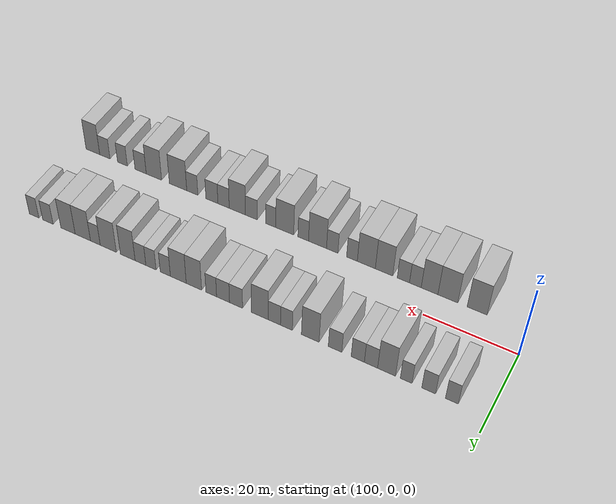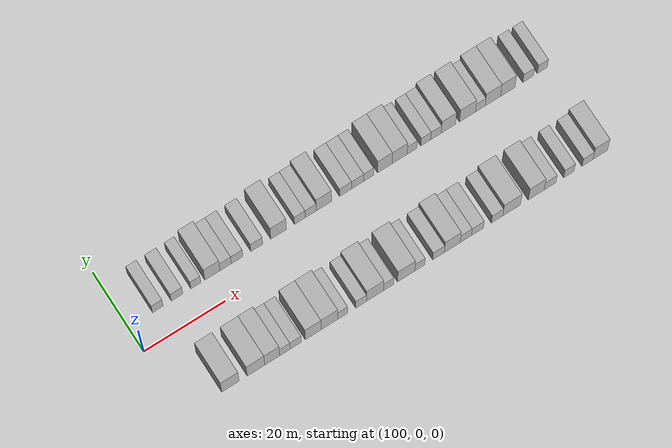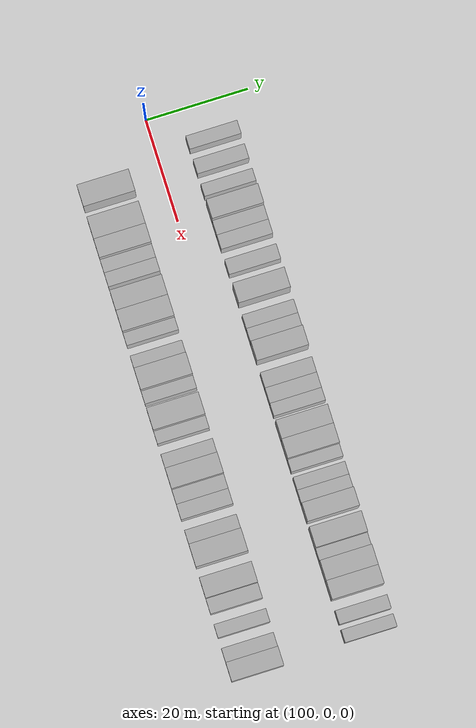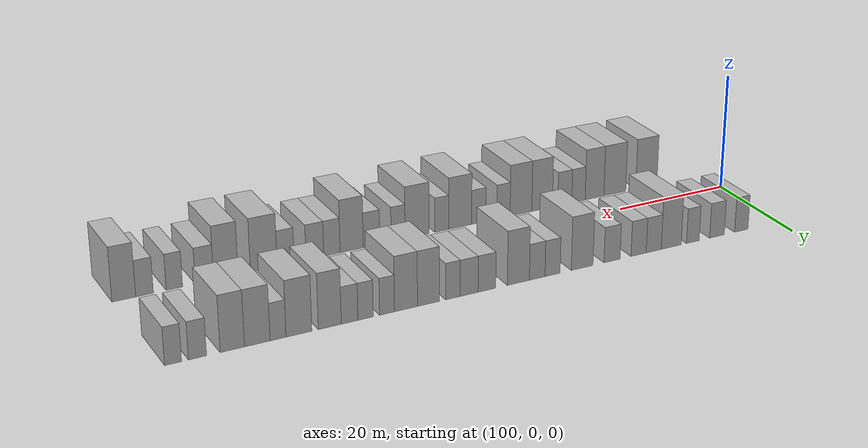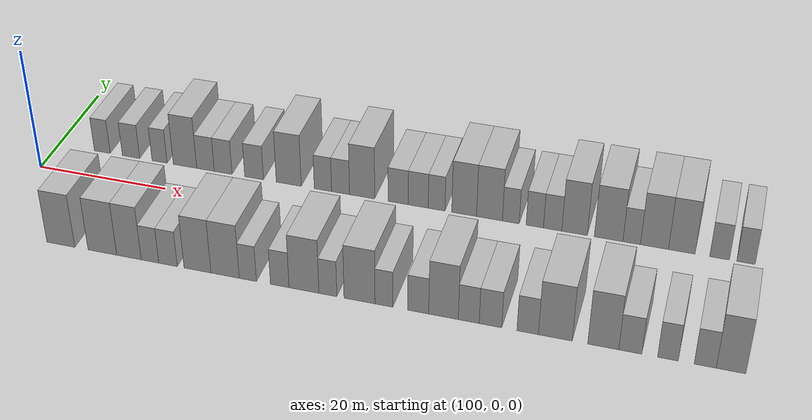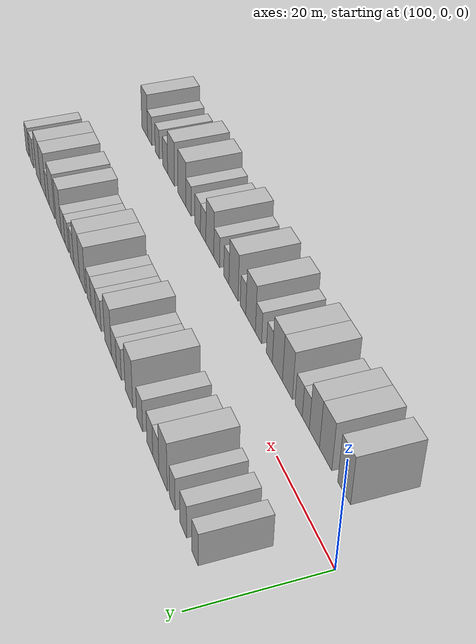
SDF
<sdf version="1.6">
 <world name="default">
  <model name="building_26">
   <static>1</static>
   <pose>107.2068 11.0000 0 0.000000 0.000000 1.570796</pose>
   <link name="link">
    <pose>0 0 3.00 0 0 0</pose>
    <collision name="collision"><geometry><box><size>10.0000 2.5972 6.0000</size></box></geometry></collision>
    <visual name="visual">
     <cast_shadows>0</cast_shadows>
     <geometry><box><size>10.0000 2.5972 6.0000</size></box></geometry>
     <material>
      <script>
       <uri>model://HANNAS_wall/materials/scripts</uri>
       <uri>model://HANNAS_wall/materials/textures</uri>
       <name>vrc/HANNAS_wall</name>
      </script>
     </material>
    </visual>
   </link>
  </model>
  <model name="building_27">
   <static>1</static>
   <pose>111.9166 11.0000 0 0.000000 0.000000 1.570796</pose>
   <link name="link">
    <pose>0 0 3.00 0 0 0</pose>
    <collision name="collision"><geometry><box><size>10.0000 2.8224 6.0000</size></box></geometry></collision>
    <visual name="visual">
     <cast_shadows>0</cast_shadows>
     <geometry><box><size>10.0000 2.8224 6.0000</size></box></geometry>
     <material>
      <script>
       <uri>model://HANNAS_wall/materials/scripts</uri>
       <uri>model://HANNAS_wall/materials/textures</uri>
       <name>vrc/HANNAS_wall</name>
      </script>
     </material>
    </visual>
   </link>
  </model>
  <model name="building_28">
   <static>1</static>
   <pose>116.5382 11.0000 0 0.000000 0.000000 1.570796</pose>
   <link name="link">
    <pose>0 0 3.00 0 0 0</pose>
    <collision name="collision"><geometry><box><size>10.0000 2.4210 6.0000</size></box></geometry></collision>
    <visual name="visual">
     <cast_shadows>0</cast_shadows>
     <geometry><box><size>10.0000 2.4210 6.0000</size></box></geometry>
     <material>
      <script>
       <uri>model://HANNAS_wall/materials/scripts</uri>
       <uri>model://HANNAS_wall/materials/textures</uri>
       <name>vrc/HANNAS_wall</name>
      </script>
     </material>
    </visual>
   </link>
  </model>
  <model name="building_29">
   <static>1</static>
   <pose>120.6174 11.0000 0 0.000000 0.000000 1.570796</pose>
   <link name="link">
    <pose>0 0 4.50 0 0 0</pose>
    <collision name="collision"><geometry><box><size>10.0000 3.7374 9.0000</size></box></geometry></collision>
    <visual name="visual">
     <cast_shadows>0</cast_shadows>
     <geometry><box><size>10.0000 3.7374 9.0000</size></box></geometry>
     <material>
      <script>
       <uri>model://HANNAS_wall/materials/scripts</uri>
       <uri>model://HANNAS_wall/materials/textures</uri>
       <name>vrc/HANNAS_wall</name>
      </script>
     </material>
    </visual>
   </link>
  </model>
  <model name="building_30">
   <static>1</static>
   <pose>123.8850 11.0000 0 0.000000 0.000000 1.570796</pose>
   <link name="link">
    <pose>0 0 3.00 0 0 0</pose>
    <collision name="collision"><geometry><box><size>10.0000 2.7978 6.0000</size></box></geometry></collision>
    <visual name="visual">
     <cast_shadows>0</cast_shadows>
     <geometry><box><size>10.0000 2.7978 6.0000</size></box></geometry>
     <material>
      <script>
       <uri>model://HANNAS_wall/materials/scripts</uri>
       <uri>model://HANNAS_wall/materials/textures</uri>
       <name>vrc/HANNAS_wall</name>
      </script>
     </material>
    </visual>
   </link>
  </model>
  <model name="building_31">
   <static>1</static>
   <pose>126.6897 11.0000 0 0.000000 0.000000 1.570796</pose>
   <link name="link">
    <pose>0 0 3.00 0 0 0</pose>
    <collision name="collision"><geometry><box><size>10.0000 2.8115 6.0000</size></box></geometry></collision>
    <visual name="visual">
     <cast_shadows>0</cast_shadows>
     <geometry><box><size>10.0000 2.8115 6.0000</size></box></geometry>
     <material>
      <script>
       <uri>model://HANNAS_wall/materials/scripts</uri>
       <uri>model://HANNAS_wall/materials/textures</uri>
       <name>vrc/HANNAS_wall</name>
      </script>
     </material>
    </visual>
   </link>
  </model>
  <model name="building_32">
   <static>1</static>
   <pose>131.5565 11.0000 0 0.000000 0.000000 1.570796</pose>
   <link name="link">
    <pose>0 0 3.00 0 0 0</pose>
    <collision name="collision"><geometry><box><size>10.0000 2.9222 6.0000</size></box></geometry></collision>
    <visual name="visual">
     <cast_shadows>0</cast_shadows>
     <geometry><box><size>10.0000 2.9222 6.0000</size></box></geometry>
     <material>
      <script>
       <uri>model://HANNAS_wall/materials/scripts</uri>
       <uri>model://HANNAS_wall/materials/textures</uri>
       <name>vrc/HANNAS_wall</name>
      </script>
     </material>
    </visual>
   </link>
  </model>
  <model name="building_33">
   <static>1</static>
   <pose>136.9534 11.0000 0 0.000000 0.000000 1.570796</pose>
   <link name="link">
    <pose>0 0 4.50 0 0 0</pose>
    <collision name="collision"><geometry><box><size>10.0000 3.8716 9.0000</size></box></geometry></collision>
    <visual name="visual">
     <cast_shadows>0</cast_shadows>
     <geometry><box><size>10.0000 3.8716 9.0000</size></box></geometry>
     <material>
      <script>
       <uri>model://HANNAS_wall/materials/scripts</uri>
       <uri>model://HANNAS_wall/materials/textures</uri>
       <name>vrc/HANNAS_wall</name>
      </script>
     </material>
    </visual>
   </link>
  </model>
  <model name="building_34">
   <static>1</static>
   <pose>142.2126 11.0000 0 0.000000 0.000000 1.570796</pose>
   <link name="link">
    <pose>0 0 3.00 0 0 0</pose>
    <collision name="collision"><geometry><box><size>10.0000 2.6468 6.0000</size></box></geometry></collision>
    <visual name="visual">
     <cast_shadows>0</cast_shadows>
     <geometry><box><size>10.0000 2.6468 6.0000</size></box></geometry>
     <material>
      <script>
       <uri>model://HANNAS_wall/materials/scripts</uri>
       <uri>model://HANNAS_wall/materials/textures</uri>
       <name>vrc/HANNAS_wall</name>
      </script>
     </material>
    </visual>
   </link>
  </model>
  <model name="building_35">
   <static>1</static>
   <pose>144.9027 11.0000 0 0.000000 0.000000 1.570796</pose>
   <link name="link">
    <pose>0 0 3.00 0 0 0</pose>
    <collision name="collision"><geometry><box><size>10.0000 2.7334 6.0000</size></box></geometry></collision>
    <visual name="visual">
     <cast_shadows>0</cast_shadows>
     <geometry><box><size>10.0000 2.7334 6.0000</size></box></geometry>
     <material>
      <script>
       <uri>model://HANNAS_wall/materials/scripts</uri>
       <uri>model://HANNAS_wall/materials/textures</uri>
       <name>vrc/HANNAS_wall</name>
      </script>
     </material>
    </visual>
   </link>
  </model>
  <model name="building_36">
   <static>1</static>
   <pose>148.1741 11.0000 0 0.000000 0.000000 1.570796</pose>
   <link name="link">
    <pose>0 0 4.50 0 0 0</pose>
    <collision name="collision"><geometry><box><size>10.0000 3.8094 9.0000</size></box></geometry></collision>
    <visual name="visual">
     <cast_shadows>0</cast_shadows>
     <geometry><box><size>10.0000 3.8094 9.0000</size></box></geometry>
     <material>
      <script>
       <uri>model://HANNAS_wall/materials/scripts</uri>
       <uri>model://HANNAS_wall/materials/textures</uri>
       <name>vrc/HANNAS_wall</name>
      </script>
     </material>
    </visual>
   </link>
  </model>
  <model name="building_37">
   <static>1</static>
   <pose>153.5771 11.0000 0 0.000000 0.000000 1.570796</pose>
   <link name="link">
    <pose>0 0 3.00 0 0 0</pose>
    <collision name="collision"><geometry><box><size>10.0000 2.9965 6.0000</size></box></geometry></collision>
    <visual name="visual">
     <cast_shadows>0</cast_shadows>
     <geometry><box><size>10.0000 2.9965 6.0000</size></box></geometry>
     <material>
      <script>
       <uri>model://HANNAS_wall/materials/scripts</uri>
       <uri>model://HANNAS_wall/materials/textures</uri>
       <name>vrc/HANNAS_wall</name>
      </script>
     </material>
    </visual>
   </link>
  </model>
  <model name="building_38">
   <static>1</static>
   <pose>156.5708 11.0000 0 0.000000 0.000000 1.570796</pose>
   <link name="link">
    <pose>0 0 3.00 0 0 0</pose>
    <collision name="collision"><geometry><box><size>10.0000 2.9910 6.0000</size></box></geometry></collision>
    <visual name="visual">
     <cast_shadows>0</cast_shadows>
     <geometry><box><size>10.0000 2.9910 6.0000</size></box></geometry>
     <material>
      <script>
       <uri>model://HANNAS_wall/materials/scripts</uri>
       <uri>model://HANNAS_wall/materials/textures</uri>
       <name>vrc/HANNAS_wall</name>
      </script>
     </material>
    </visual>
   </link>
  </model>
  <model name="building_39">
   <static>1</static>
   <pose>159.3065 11.0000 0 0.000000 0.000000 1.570796</pose>
   <link name="link">
    <pose>0 0 3.00 0 0 0</pose>
    <collision name="collision"><geometry><box><size>10.0000 2.4803 6.0000</size></box></geometry></collision>
    <visual name="visual">
     <cast_shadows>0</cast_shadows>
     <geometry><box><size>10.0000 2.4803 6.0000</size></box></geometry>
     <material>
      <script>
       <uri>model://HANNAS_wall/materials/scripts</uri>
       <uri>model://HANNAS_wall/materials/textures</uri>
       <name>vrc/HANNAS_wall</name>
      </script>
     </material>
    </visual>
   </link>
  </model>
  <model name="building_40">
   <static>1</static>
   <pose>163.3638 11.0000 0 0.000000 0.000000 1.570796</pose>
   <link name="link">
    <pose>0 0 4.50 0 0 0</pose>
    <collision name="collision"><geometry><box><size>10.0000 3.6343 9.0000</size></box></geometry></collision>
    <visual name="visual">
     <cast_shadows>0</cast_shadows>
     <geometry><box><size>10.0000 3.6343 9.0000</size></box></geometry>
     <material>
      <script>
       <uri>model://HANNAS_wall/materials/scripts</uri>
       <uri>model://HANNAS_wall/materials/textures</uri>
       <name>vrc/HANNAS_wall</name>
      </script>
     </material>
    </visual>
   </link>
  </model>
  <model name="building_41">
   <static>1</static>
   <pose>167.0619 11.0000 0 0.000000 0.000000 1.570796</pose>
   <link name="link">
    <pose>0 0 4.50 0 0 0</pose>
    <collision name="collision"><geometry><box><size>10.0000 3.7618 9.0000</size></box></geometry></collision>
    <visual name="visual">
     <cast_shadows>0</cast_shadows>
     <geometry><box><size>10.0000 3.7618 9.0000</size></box></geometry>
     <material>
      <script>
       <uri>model://HANNAS_wall/materials/scripts</uri>
       <uri>model://HANNAS_wall/materials/textures</uri>
       <name>vrc/HANNAS_wall</name>
      </script>
     </material>
    </visual>
   </link>
  </model>
  <model name="building_42">
   <static>1</static>
   <pose>170.1567 11.0000 0 0.000000 0.000000 1.570796</pose>
   <link name="link">
    <pose>0 0 3.00 0 0 0</pose>
    <collision name="collision"><geometry><box><size>10.0000 2.4279 6.0000</size></box></geometry></collision>
    <visual name="visual">
     <cast_shadows>0</cast_shadows>
     <geometry><box><size>10.0000 2.4279 6.0000</size></box></geometry>
     <material>
      <script>
       <uri>model://HANNAS_wall/materials/scripts</uri>
       <uri>model://HANNAS_wall/materials/textures</uri>
       <name>vrc/HANNAS_wall</name>
      </script>
     </material>
    </visual>
   </link>
  </model>
  <model name="building_43">
   <static>1</static>
   <pose>173.6098 11.0000 0 0.000000 0.000000 1.570796</pose>
   <link name="link">
    <pose>0 0 3.00 0 0 0</pose>
    <collision name="collision"><geometry><box><size>10.0000 2.4784 6.0000</size></box></geometry></collision>
    <visual name="visual">
     <cast_shadows>0</cast_shadows>
     <geometry><box><size>10.0000 2.4784 6.0000</size></box></geometry>
     <material>
      <script>
       <uri>model://HANNAS_wall/materials/scripts</uri>
       <uri>model://HANNAS_wall/materials/textures</uri>
       <name>vrc/HANNAS_wall</name>
      </script>
     </material>
    </visual>
   </link>
  </model>
  <model name="building_44">
   <static>1</static>
   <pose>176.1597 11.0000 0 0.000000 0.000000 1.570796</pose>
   <link name="link">
    <pose>0 0 3.00 0 0 0</pose>
    <collision name="collision"><geometry><box><size>10.0000 2.6212 6.0000</size></box></geometry></collision>
    <visual name="visual">
     <cast_shadows>0</cast_shadows>
     <geometry><box><size>10.0000 2.6212 6.0000</size></box></geometry>
     <material>
      <script>
       <uri>model://HANNAS_wall/materials/scripts</uri>
       <uri>model://HANNAS_wall/materials/textures</uri>
       <name>vrc/HANNAS_wall</name>
      </script>
     </material>
    </visual>
   </link>
  </model>
  <model name="building_45">
   <static>1</static>
   <pose>179.2746 11.0000 0 0.000000 0.000000 1.570796</pose>
   <link name="link">
    <pose>0 0 4.50 0 0 0</pose>
    <collision name="collision"><geometry><box><size>10.0000 3.6086 9.0000</size></box></geometry></collision>
    <visual name="visual">
     <cast_shadows>0</cast_shadows>
     <geometry><box><size>10.0000 3.6086 9.0000</size></box></geometry>
     <material>
      <script>
       <uri>model://HANNAS_wall/materials/scripts</uri>
       <uri>model://HANNAS_wall/materials/textures</uri>
       <name>vrc/HANNAS_wall</name>
      </script>
     </material>
    </visual>
   </link>
  </model>
  <model name="building_46">
   <static>1</static>
   <pose>184.0814 11.0000 0 0.000000 0.000000 1.570796</pose>
   <link name="link">
    <pose>0 0 4.50 0 0 0</pose>
    <collision name="collision"><geometry><box><size>10.0000 4.0050 9.0000</size></box></geometry></collision>
    <visual name="visual">
     <cast_shadows>0</cast_shadows>
     <geometry><box><size>10.0000 4.0050 9.0000</size></box></geometry>
     <material>
      <script>
       <uri>model://HANNAS_wall/materials/scripts</uri>
       <uri>model://HANNAS_wall/materials/textures</uri>
       <name>vrc/HANNAS_wall</name>
      </script>
     </material>
    </visual>
   </link>
  </model>
  <model name="building_47">
   <static>1</static>
   <pose>187.3030 11.0000 0 0.000000 0.000000 1.570796</pose>
   <link name="link">
    <pose>0 0 3.00 0 0 0</pose>
    <collision name="collision"><geometry><box><size>10.0000 2.4381 6.0000</size></box></geometry></collision>
    <visual name="visual">
     <cast_shadows>0</cast_shadows>
     <geometry><box><size>10.0000 2.4381 6.0000</size></box></geometry>
     <material>
      <script>
       <uri>model://HANNAS_wall/materials/scripts</uri>
       <uri>model://HANNAS_wall/materials/textures</uri>
       <name>vrc/HANNAS_wall</name>
      </script>
     </material>
    </visual>
   </link>
  </model>
  <model name="building_48">
   <static>1</static>
   <pose>190.4623 11.0000 0 0.000000 0.000000 1.570796</pose>
   <link name="link">
    <pose>0 0 4.50 0 0 0</pose>
    <collision name="collision"><geometry><box><size>10.0000 3.8804 9.0000</size></box></geometry></collision>
    <visual name="visual">
     <cast_shadows>0</cast_shadows>
     <geometry><box><size>10.0000 3.8804 9.0000</size></box></geometry>
     <material>
      <script>
       <uri>model://HANNAS_wall/materials/scripts</uri>
       <uri>model://HANNAS_wall/materials/textures</uri>
       <name>vrc/HANNAS_wall</name>
      </script>
     </material>
    </visual>
   </link>
  </model>
  <model name="building_49">
   <static>1</static>
   <pose>194.2294 11.0000 0 0.000000 0.000000 1.570796</pose>
   <link name="link">
    <pose>0 0 4.50 0 0 0</pose>
    <collision name="collision"><geometry><box><size>10.0000 3.6539 9.0000</size></box></geometry></collision>
    <visual name="visual">
     <cast_shadows>0</cast_shadows>
     <geometry><box><size>10.0000 3.6539 9.0000</size></box></geometry>
     <material>
      <script>
       <uri>model://HANNAS_wall/materials/scripts</uri>
       <uri>model://HANNAS_wall/materials/textures</uri>
       <name>vrc/HANNAS_wall</name>
      </script>
     </material>
    </visual>
   </link>
  </model>
  <model name="building_50">
   <static>1</static>
   <pose>199.3961 11.0000 0 0.000000 0.000000 1.570796</pose>
   <link name="link">
    <pose>0 0 3.00 0 0 0</pose>
    <collision name="collision"><geometry><box><size>10.0000 2.6794 6.0000</size></box></geometry></collision>
    <visual name="visual">
     <cast_shadows>0</cast_shadows>
     <geometry><box><size>10.0000 2.6794 6.0000</size></box></geometry>
     <material>
      <script>
       <uri>model://HANNAS_wall/materials/scripts</uri>
       <uri>model://HANNAS_wall/materials/textures</uri>
       <name>vrc/HANNAS_wall</name>
      </script>
     </material>
    </visual>
   </link>
  </model>
  <model name="building_51">
   <static>1</static>
   <pose>202.9706 11.0000 0 0.000000 0.000000 1.570796</pose>
   <link name="link">
    <pose>0 0 3.00 0 0 0</pose>
    <collision name="collision"><geometry><box><size>10.0000 2.4696 6.0000</size></box></geometry></collision>
    <visual name="visual">
     <cast_shadows>0</cast_shadows>
     <geometry><box><size>10.0000 2.4696 6.0000</size></box></geometry>
     <material>
      <script>
       <uri>model://HANNAS_wall/materials/scripts</uri>
       <uri>model://HANNAS_wall/materials/textures</uri>
       <name>vrc/HANNAS_wall</name>
      </script>
     </material>
    </visual>
   </link>
  </model>
  <model name="building_76">
   <static>1</static>
   <pose>111.1537 -11.0000 0 0.000000 0.000000 1.570796</pose>
   <link name="link">
    <pose>0 0 4.50 0 0 0</pose>
    <collision name="collision"><geometry><box><size>10.0000 4.2440 9.0000</size></box></geometry></collision>
    <visual name="visual">
     <cast_shadows>0</cast_shadows>
     <geometry><box><size>10.0000 4.2440 9.0000</size></box></geometry>
     <material>
      <script>
       <uri>model://HANNAS_wall/materials/scripts</uri>
       <uri>model://HANNAS_wall/materials/textures</uri>
       <name>vrc/HANNAS_wall</name>
      </script>
     </material>
    </visual>
   </link>
  </model>
  <model name="building_77">
   <static>1</static>
   <pose>117.4256 -11.0000 0 0.000000 0.000000 1.570796</pose>
   <link name="link">
    <pose>0 0 4.50 0 0 0</pose>
    <collision name="collision"><geometry><box><size>10.0000 4.2996 9.0000</size></box></geometry></collision>
    <visual name="visual">
     <cast_shadows>0</cast_shadows>
     <geometry><box><size>10.0000 4.2996 9.0000</size></box></geometry>
     <material>
      <script>
       <uri>model://HANNAS_wall/materials/scripts</uri>
       <uri>model://HANNAS_wall/materials/textures</uri>
       <name>vrc/HANNAS_wall</name>
      </script>
     </material>
    </visual>
   </link>
  </model>
  <model name="building_78">
   <static>1</static>
   <pose>121.4001 -11.0000 0 0.000000 0.000000 1.570796</pose>
   <link name="link">
    <pose>0 0 4.50 0 0 0</pose>
    <collision name="collision"><geometry><box><size>10.0000 3.6494 9.0000</size></box></geometry></collision>
    <visual name="visual">
     <cast_shadows>0</cast_shadows>
     <geometry><box><size>10.0000 3.6494 9.0000</size></box></geometry>
     <material>
      <script>
       <uri>model://HANNAS_wall/materials/scripts</uri>
       <uri>model://HANNAS_wall/materials/textures</uri>
       <name>vrc/HANNAS_wall</name>
      </script>
     </material>
    </visual>
   </link>
  </model>
  <model name="building_79">
   <static>1</static>
   <pose>124.5179 -11.0000 0 0.000000 0.000000 1.570796</pose>
   <link name="link">
    <pose>0 0 3.00 0 0 0</pose>
    <collision name="collision"><geometry><box><size>10.0000 2.5863 6.0000</size></box></geometry></collision>
    <visual name="visual">
     <cast_shadows>0</cast_shadows>
     <geometry><box><size>10.0000 2.5863 6.0000</size></box></geometry>
     <material>
      <script>
       <uri>model://HANNAS_wall/materials/scripts</uri>
       <uri>model://HANNAS_wall/materials/textures</uri>
       <name>vrc/HANNAS_wall</name>
      </script>
     </material>
    </visual>
   </link>
  </model>
  <model name="building_80">
   <static>1</static>
   <pose>127.1703 -11.0000 0 0.000000 0.000000 1.570796</pose>
   <link name="link">
    <pose>0 0 3.00 0 0 0</pose>
    <collision name="collision"><geometry><box><size>10.0000 2.7184 6.0000</size></box></geometry></collision>
    <visual name="visual">
     <cast_shadows>0</cast_shadows>
     <geometry><box><size>10.0000 2.7184 6.0000</size></box></geometry>
     <material>
      <script>
       <uri>model://HANNAS_wall/materials/scripts</uri>
       <uri>model://HANNAS_wall/materials/textures</uri>
       <name>vrc/HANNAS_wall</name>
      </script>
     </material>
    </visual>
   </link>
  </model>
  <model name="building_81">
   <static>1</static>
   <pose>131.4827 -11.0000 0 0.000000 0.000000 1.570796</pose>
   <link name="link">
    <pose>0 0 4.50 0 0 0</pose>
    <collision name="collision"><geometry><box><size>10.0000 3.9064 9.0000</size></box></geometry></collision>
    <visual name="visual">
     <cast_shadows>0</cast_shadows>
     <geometry><box><size>10.0000 3.9064 9.0000</size></box></geometry>
     <material>
      <script>
       <uri>model://HANNAS_wall/materials/scripts</uri>
       <uri>model://HANNAS_wall/materials/textures</uri>
       <name>vrc/HANNAS_wall</name>
      </script>
     </material>
    </visual>
   </link>
  </model>
  <model name="building_82">
   <static>1</static>
   <pose>135.4788 -11.0000 0 0.000000 0.000000 1.570796</pose>
   <link name="link">
    <pose>0 0 4.50 0 0 0</pose>
    <collision name="collision"><geometry><box><size>10.0000 4.0857 9.0000</size></box></geometry></collision>
    <visual name="visual">
     <cast_shadows>0</cast_shadows>
     <geometry><box><size>10.0000 4.0857 9.0000</size></box></geometry>
     <material>
      <script>
       <uri>model://HANNAS_wall/materials/scripts</uri>
       <uri>model://HANNAS_wall/materials/textures</uri>
       <name>vrc/HANNAS_wall</name>
      </script>
     </material>
    </visual>
   </link>
  </model>
  <model name="building_83">
   <static>1</static>
   <pose>138.7506 -11.0000 0 0.000000 0.000000 1.570796</pose>
   <link name="link">
    <pose>0 0 3.00 0 0 0</pose>
    <collision name="collision"><geometry><box><size>10.0000 2.4579 6.0000</size></box></geometry></collision>
    <visual name="visual">
     <cast_shadows>0</cast_shadows>
     <geometry><box><size>10.0000 2.4579 6.0000</size></box></geometry>
     <material>
      <script>
       <uri>model://HANNAS_wall/materials/scripts</uri>
       <uri>model://HANNAS_wall/materials/textures</uri>
       <name>vrc/HANNAS_wall</name>
      </script>
     </material>
    </visual>
   </link>
  </model>
  <model name="building_84">
   <static>1</static>
   <pose>143.2976 -11.0000 0 0.000000 0.000000 1.570796</pose>
   <link name="link">
    <pose>0 0 3.00 0 0 0</pose>
    <collision name="collision"><geometry><box><size>10.0000 2.6361 6.0000</size></box></geometry></collision>
    <visual name="visual">
     <cast_shadows>0</cast_shadows>
     <geometry><box><size>10.0000 2.6361 6.0000</size></box></geometry>
     <material>
      <script>
       <uri>model://HANNAS_wall/materials/scripts</uri>
       <uri>model://HANNAS_wall/materials/textures</uri>
       <name>vrc/HANNAS_wall</name>
      </script>
     </material>
    </visual>
   </link>
  </model>
  <model name="building_85">
   <static>1</static>
   <pose>146.7163 -11.0000 0 0.000000 0.000000 1.570796</pose>
   <link name="link">
    <pose>0 0 4.50 0 0 0</pose>
    <collision name="collision"><geometry><box><size>10.0000 4.2013 9.0000</size></box></geometry></collision>
    <visual name="visual">
     <cast_shadows>0</cast_shadows>
     <geometry><box><size>10.0000 4.2013 9.0000</size></box></geometry>
     <material>
      <script>
       <uri>model://HANNAS_wall/materials/scripts</uri>
       <uri>model://HANNAS_wall/materials/textures</uri>
       <name>vrc/HANNAS_wall</name>
      </script>
     </material>
    </visual>
   </link>
  </model>
  <model name="building_86">
   <static>1</static>
   <pose>150.0654 -11.0000 0 0.000000 0.000000 1.570796</pose>
   <link name="link">
    <pose>0 0 3.00 0 0 0</pose>
    <collision name="collision"><geometry><box><size>10.0000 2.4969 6.0000</size></box></geometry></collision>
    <visual name="visual">
     <cast_shadows>0</cast_shadows>
     <geometry><box><size>10.0000 2.4969 6.0000</size></box></geometry>
     <material>
      <script>
       <uri>model://HANNAS_wall/materials/scripts</uri>
       <uri>model://HANNAS_wall/materials/textures</uri>
       <name>vrc/HANNAS_wall</name>
      </script>
     </material>
    </visual>
   </link>
  </model>
  <model name="building_87">
   <static>1</static>
   <pose>154.4564 -11.0000 0 0.000000 0.000000 1.570796</pose>
   <link name="link">
    <pose>0 0 4.50 0 0 0</pose>
    <collision name="collision"><geometry><box><size>10.0000 4.2851 9.0000</size></box></geometry></collision>
    <visual name="visual">
     <cast_shadows>0</cast_shadows>
     <geometry><box><size>10.0000 4.2851 9.0000</size></box></geometry>
     <material>
      <script>
       <uri>model://HANNAS_wall/materials/scripts</uri>
       <uri>model://HANNAS_wall/materials/textures</uri>
       <name>vrc/HANNAS_wall</name>
      </script>
     </material>
    </visual>
   </link>
  </model>
  <model name="building_88">
   <static>1</static>
   <pose>157.8262 -11.0000 0 0.000000 0.000000 1.570796</pose>
   <link name="link">
    <pose>0 0 3.00 0 0 0</pose>
    <collision name="collision"><geometry><box><size>10.0000 2.4544 6.0000</size></box></geometry></collision>
    <visual name="visual">
     <cast_shadows>0</cast_shadows>
     <geometry><box><size>10.0000 2.4544 6.0000</size></box></geometry>
     <material>
      <script>
       <uri>model://HANNAS_wall/materials/scripts</uri>
       <uri>model://HANNAS_wall/materials/textures</uri>
       <name>vrc/HANNAS_wall</name>
      </script>
     </material>
    </visual>
   </link>
  </model>
  <model name="building_89">
   <static>1</static>
   <pose>162.4864 -11.0000 0 0.000000 0.000000 1.570796</pose>
   <link name="link">
    <pose>0 0 3.00 0 0 0</pose>
    <collision name="collision"><geometry><box><size>10.0000 2.8660 6.0000</size></box></geometry></collision>
    <visual name="visual">
     <cast_shadows>0</cast_shadows>
     <geometry><box><size>10.0000 2.8660 6.0000</size></box></geometry>
     <material>
      <script>
       <uri>model://HANNAS_wall/materials/scripts</uri>
       <uri>model://HANNAS_wall/materials/textures</uri>
       <name>vrc/HANNAS_wall</name>
      </script>
     </material>
    </visual>
   </link>
  </model>
  <model name="building_90">
   <static>1</static>
   <pose>165.9108 -11.0000 0 0.000000 0.000000 1.570796</pose>
   <link name="link">
    <pose>0 0 4.50 0 0 0</pose>
    <collision name="collision"><geometry><box><size>10.0000 3.9828 9.0000</size></box></geometry></collision>
    <visual name="visual">
     <cast_shadows>0</cast_shadows>
     <geometry><box><size>10.0000 3.9828 9.0000</size></box></geometry>
     <material>
      <script>
       <uri>model://HANNAS_wall/materials/scripts</uri>
       <uri>model://HANNAS_wall/materials/textures</uri>
       <name>vrc/HANNAS_wall</name>
      </script>
     </material>
    </visual>
   </link>
  </model>
  <model name="building_91">
   <static>1</static>
   <pose>169.3034 -11.0000 0 0.000000 0.000000 1.570796</pose>
   <link name="link">
    <pose>0 0 3.00 0 0 0</pose>
    <collision name="collision"><geometry><box><size>10.0000 2.8024 6.0000</size></box></geometry></collision>
    <visual name="visual">
     <cast_shadows>0</cast_shadows>
     <geometry><box><size>10.0000 2.8024 6.0000</size></box></geometry>
     <material>
      <script>
       <uri>model://HANNAS_wall/materials/scripts</uri>
       <uri>model://HANNAS_wall/materials/textures</uri>
       <name>vrc/HANNAS_wall</name>
      </script>
     </material>
    </visual>
   </link>
  </model>
  <model name="building_92">
   <static>1</static>
   <pose>172.2028 -11.0000 0 0.000000 0.000000 1.570796</pose>
   <link name="link">
    <pose>0 0 3.00 0 0 0</pose>
    <collision name="collision"><geometry><box><size>10.0000 2.9963 6.0000</size></box></geometry></collision>
    <visual name="visual">
     <cast_shadows>0</cast_shadows>
     <geometry><box><size>10.0000 2.9963 6.0000</size></box></geometry>
     <material>
      <script>
       <uri>model://HANNAS_wall/materials/scripts</uri>
       <uri>model://HANNAS_wall/materials/textures</uri>
       <name>vrc/HANNAS_wall</name>
      </script>
     </material>
    </visual>
   </link>
  </model>
  <model name="building_93">
   <static>1</static>
   <pose>177.1060 -11.0000 0 0.000000 0.000000 1.570796</pose>
   <link name="link">
    <pose>0 0 3.00 0 0 0</pose>
    <collision name="collision"><geometry><box><size>10.0000 2.8101 6.0000</size></box></geometry></collision>
    <visual name="visual">
     <cast_shadows>0</cast_shadows>
     <geometry><box><size>10.0000 2.8101 6.0000</size></box></geometry>
     <material>
      <script>
       <uri>model://HANNAS_wall/materials/scripts</uri>
       <uri>model://HANNAS_wall/materials/textures</uri>
       <name>vrc/HANNAS_wall</name>
      </script>
     </material>
    </visual>
   </link>
  </model>
  <model name="building_94">
   <static>1</static>
   <pose>180.7171 -11.0000 0 0.000000 0.000000 1.570796</pose>
   <link name="link">
    <pose>0 0 4.50 0 0 0</pose>
    <collision name="collision"><geometry><box><size>10.0000 4.4122 9.0000</size></box></geometry></collision>
    <visual name="visual">
     <cast_shadows>0</cast_shadows>
     <geometry><box><size>10.0000 4.4122 9.0000</size></box></geometry>
     <material>
      <script>
       <uri>model://HANNAS_wall/materials/scripts</uri>
       <uri>model://HANNAS_wall/materials/textures</uri>
       <name>vrc/HANNAS_wall</name>
      </script>
     </material>
    </visual>
   </link>
  </model>
  <model name="building_95">
   <static>1</static>
   <pose>186.9097 -11.0000 0 0.000000 0.000000 1.570796</pose>
   <link name="link">
    <pose>0 0 4.50 0 0 0</pose>
    <collision name="collision"><geometry><box><size>10.0000 3.9729 9.0000</size></box></geometry></collision>
    <visual name="visual">
     <cast_shadows>0</cast_shadows>
     <geometry><box><size>10.0000 3.9729 9.0000</size></box></geometry>
     <material>
      <script>
       <uri>model://HANNAS_wall/materials/scripts</uri>
       <uri>model://HANNAS_wall/materials/textures</uri>
       <name>vrc/HANNAS_wall</name>
      </script>
     </material>
    </visual>
   </link>
  </model>
  <model name="building_96">
   <static>1</static>
   <pose>190.3664 -11.0000 0 0.000000 0.000000 1.570796</pose>
   <link name="link">
    <pose>0 0 3.00 0 0 0</pose>
    <collision name="collision"><geometry><box><size>10.0000 2.9404 6.0000</size></box></geometry></collision>
    <visual name="visual">
     <cast_shadows>0</cast_shadows>
     <geometry><box><size>10.0000 2.9404 6.0000</size></box></geometry>
     <material>
      <script>
       <uri>model://HANNAS_wall/materials/scripts</uri>
       <uri>model://HANNAS_wall/materials/textures</uri>
       <name>vrc/HANNAS_wall</name>
      </script>
     </material>
    </visual>
   </link>
  </model>
  <model name="building_97">
   <static>1</static>
   <pose>195.1313 -11.0000 0 0.000000 0.000000 1.570796</pose>
   <link name="link">
    <pose>0 0 3.00 0 0 0</pose>
    <collision name="collision"><geometry><box><size>10.0000 2.5895 6.0000</size></box></geometry></collision>
    <visual name="visual">
     <cast_shadows>0</cast_shadows>
     <geometry><box><size>10.0000 2.5895 6.0000</size></box></geometry>
     <material>
      <script>
       <uri>model://HANNAS_wall/materials/scripts</uri>
       <uri>model://HANNAS_wall/materials/textures</uri>
       <name>vrc/HANNAS_wall</name>
      </script>
     </material>
    </visual>
   </link>
  </model>
  <model name="building_98">
   <static>1</static>
   <pose>199.7983 -11.0000 0 0.000000 0.000000 1.570796</pose>
   <link name="link">
    <pose>0 0 3.00 0 0 0</pose>
    <collision name="collision"><geometry><box><size>10.0000 2.7444 6.0000</size></box></geometry></collision>
    <visual name="visual">
     <cast_shadows>0</cast_shadows>
     <geometry><box><size>10.0000 2.7444 6.0000</size></box></geometry>
     <material>
      <script>
       <uri>model://HANNAS_wall/materials/scripts</uri>
       <uri>model://HANNAS_wall/materials/textures</uri>
       <name>vrc/HANNAS_wall</name>
      </script>
     </material>
    </visual>
   </link>
  </model>
  <model name="building_99">
   <static>1</static>
   <pose>203.0032 -11.0000 0 0.000000 0.000000 1.570796</pose>
   <link name="link">
    <pose>0 0 4.50 0 0 0</pose>
    <collision name="collision"><geometry><box><size>10.0000 3.6653 9.0000</size></box></geometry></collision>
    <visual name="visual">
     <cast_shadows>0</cast_shadows>
     <geometry><box><size>10.0000 3.6653 9.0000</size></box></geometry>
     <material>
      <script>
       <uri>model://HANNAS_wall/materials/scripts</uri>
       <uri>model://HANNAS_wall/materials/textures</uri>
       <name>vrc/HANNAS_wall</name>
      </script>
     </material>
    </visual>
   </link>
  </model>
 </world>
</sdf>
